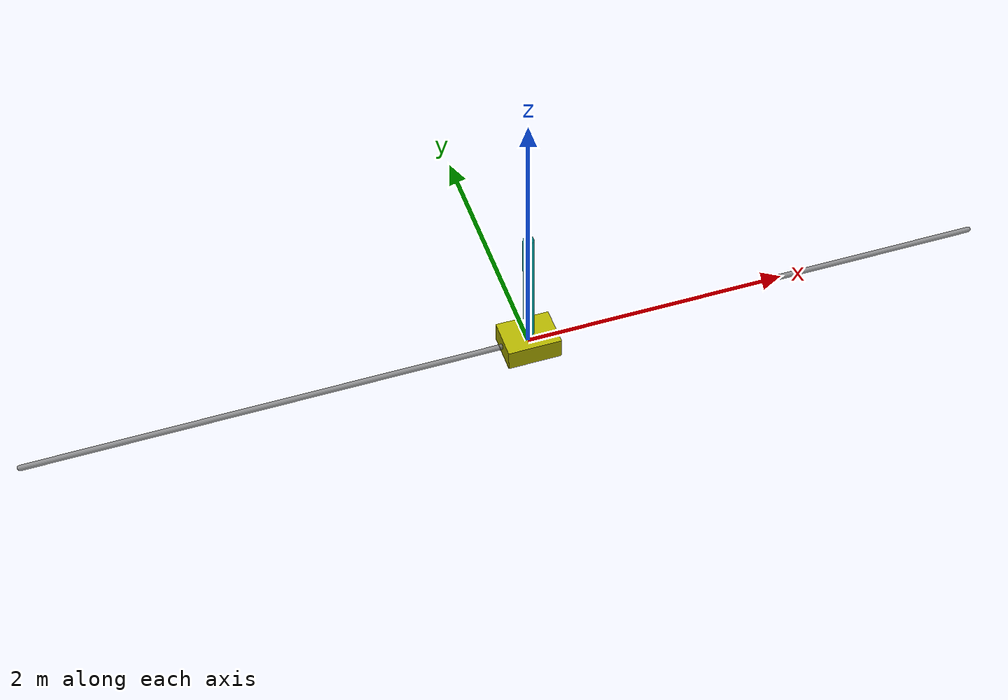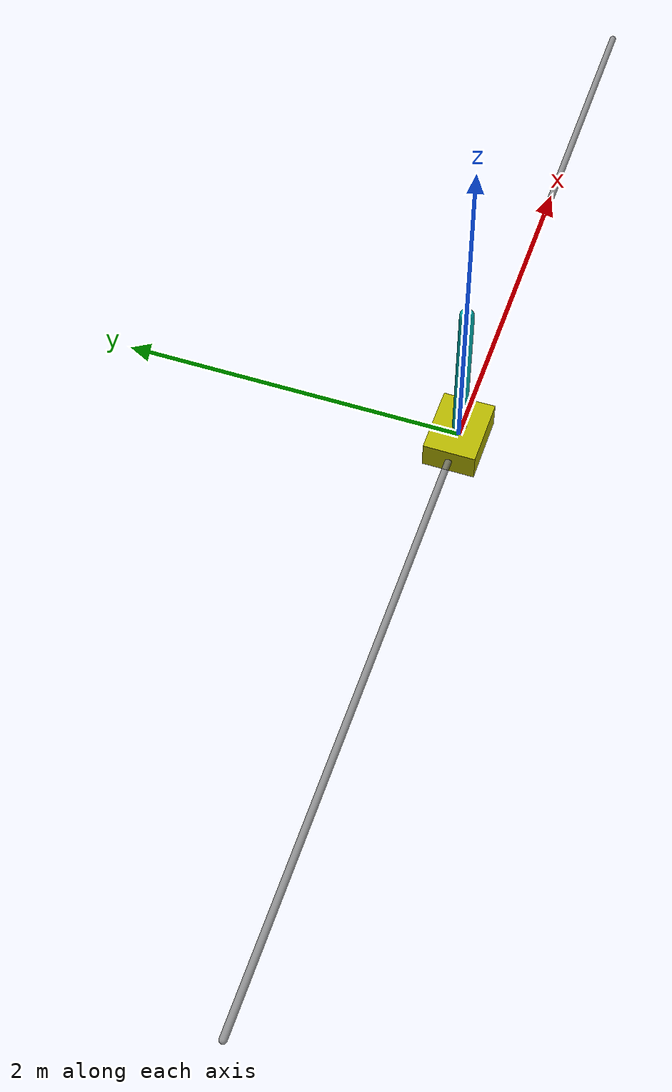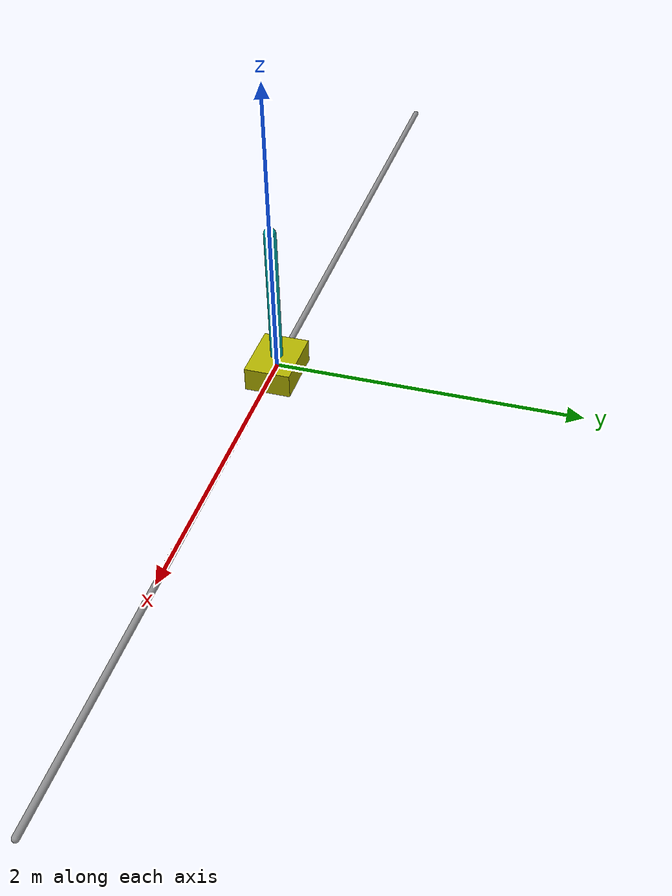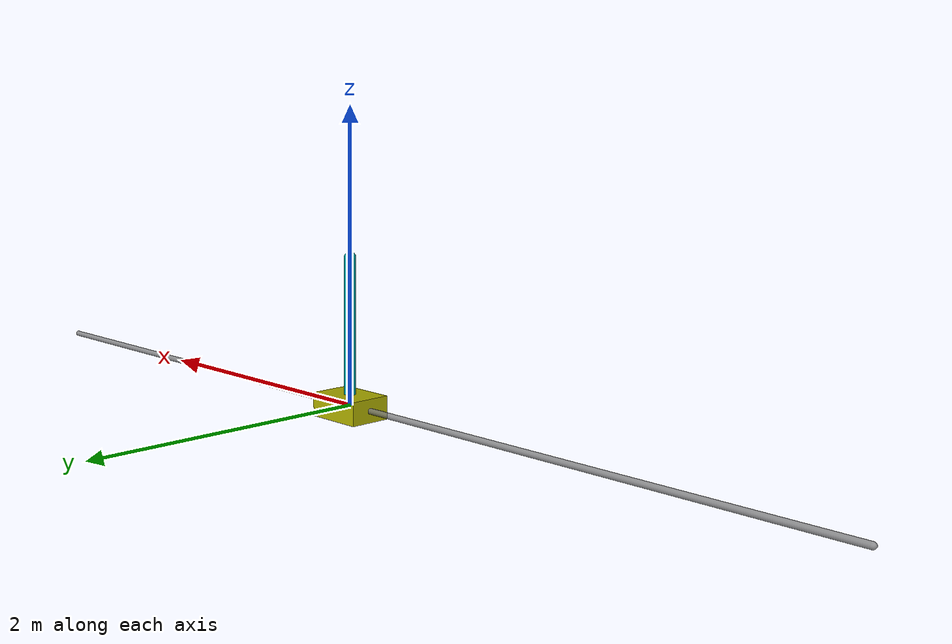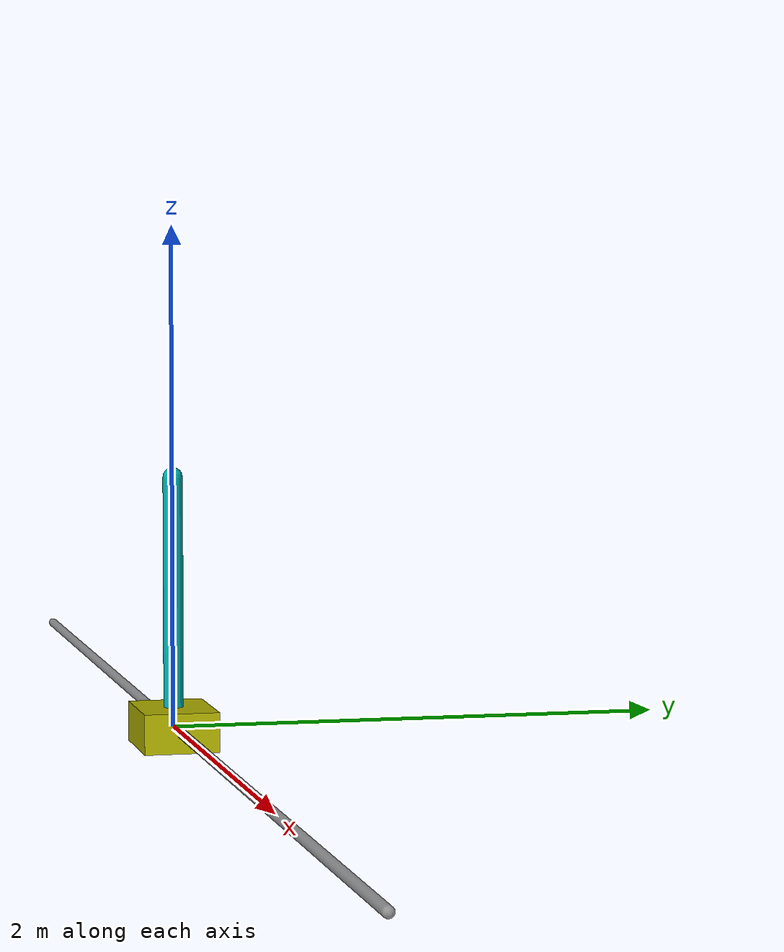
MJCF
<mujoco model="mjcf_cartpole">
    <compiler angle="radian" inertiafromgeom="true"/>
    <option gravity="0 0 -9.81" timestep="0.002" integrator="RK4"/>

    <default>
        <geom contype="0" conaffinity="0"/>
    </default>

    <worldbody>
        <!-- Visual rail along X showing ±3.6m travel -->
        <geom name="rail" type="capsule" fromto="-3.6 0 0 3.6 0 0"
              size="0.02" rgba="0.5 0.5 0.5 0.8"/>

        <body name="cart" pos="0 0 0">
            <joint name="slider" type="slide" axis="1 0 0"
                   limited="true" range="-3.6 3.6" damping="8.0"/>
            <geom name="cart_geom" type="box" size="0.2 0.15 0.08"
                  mass="1.0" rgba="0.7 0.7 0 1"/>

            <body name="pole" pos="0 0 0">
                <joint name="hinge" type="hinge" axis="0 1 0"
                       damping="0.4"/>
                <geom name="pole_geom" type="capsule"
                      fromto="0 0 0 0 0 1.0" size="0.04"
                      mass="0.5" rgba="0 0.7 0.7 1"/>
            </body>
        </body>
    </worldbody>

    <actuator>
        <motor name="slide_motor" joint="slider" gear="40"
               ctrllimited="true" ctrlrange="-1 1"/>
    </actuator>
</mujoco>
